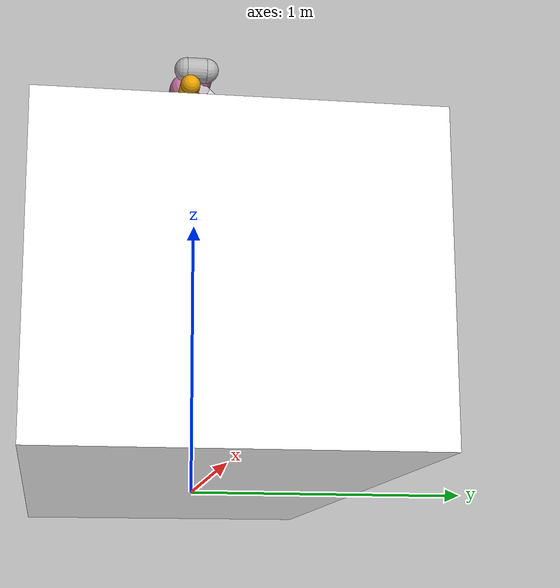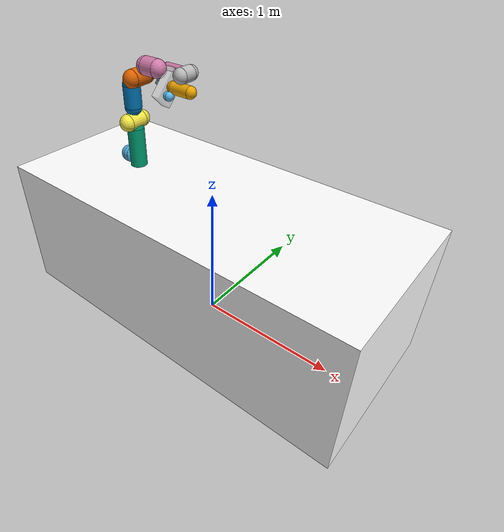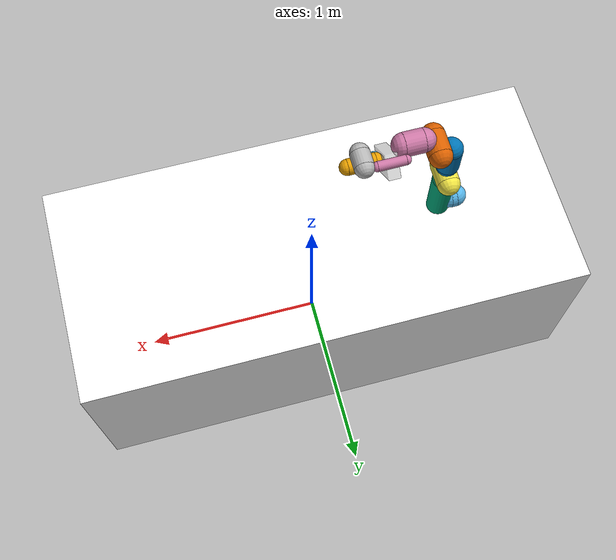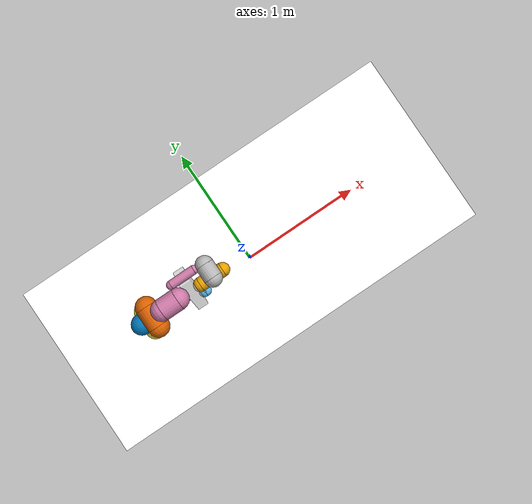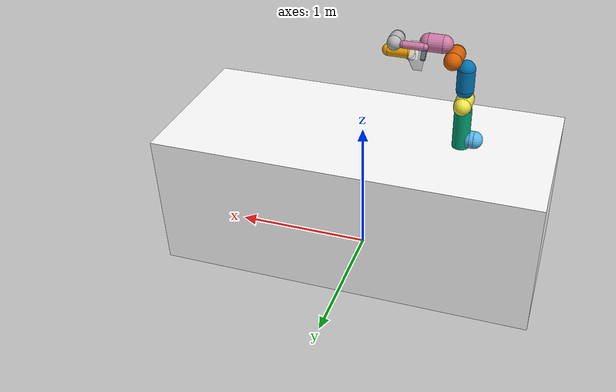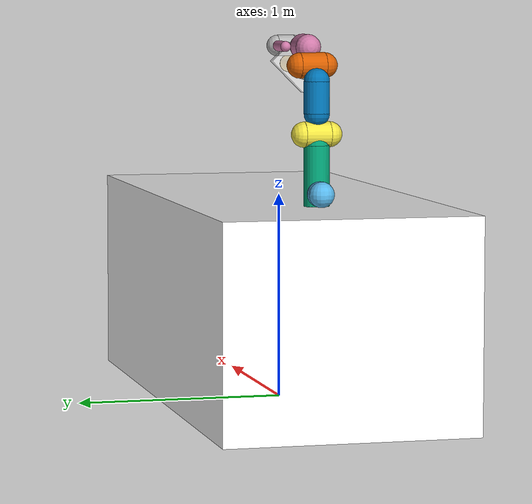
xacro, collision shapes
<?xml version="1.0" encoding="utf-8"?>
<robot xmlns:xacro="http://www.ros.org/wiki/xacro" name="panda">

  <xacro:arg name="arm_id" default="panda" />
  <xacro:arg name="hand" default="true" />

  <!-- box shaped table as base for the Panda -->
  <link name="base">
    <visual>
      <origin xyz="0 0 0.5" rpy="0 0 0"/>
      <geometry>
        <box size="2.7 1.2 1" />
      </geometry>
      <material name="White">
        <color rgba="1.0 1.0 1.0 1.0"/>
      </material>
    </visual>
    <collision>
      <origin xyz="0 0 0.5" rpy="0 0 0  "/>
      <geometry>
        <box size="2.7 1.2 1" />
      </geometry>
    </collision>
  </link>

  <!-- single arm with gripper -->
  <xacro:include filename="$(find franka_description)/robots/panda_arm.xacro"/>
  <xacro:panda_arm arm_id="panda" connected_to="base"  xyz="-0.7 0 1.00"
  sd0="0.01" sd1="0.01" sd2="0.01" sd3="0.01" sd4="0.01" sd5="0.01" sd6="0.01" sd7="0.01" sd8="0.001"
  a1="0.000474560429981023" d1="0.000483166682165302" theta1="-0.00304883355188383" alpha1="0.00148667086907321"
  a2="-3.69828865924539e-05" d2="-0.000288069909956647" theta2="-0.00812428761844092" alpha2="0.00421567136144437"
  a3="-0.000154357131719552" d3="-0.0010921364777817" theta3="0.00031894496234845" alpha3="-0.0030474925191138"
  a4="-0.000117600404870226" d4="0.000712982958085577" theta4="-0.00571261767823764" alpha4="0.00176867969486185"
  a5="-0.00058993701921134" d5="-0.000326649645213642" theta5="0.00939394386245098" alpha5="0.00123723772258799"
  a6="-0.000433705606644922" d6="-0.000293762477507038" theta6="-0.0156742348127345" alpha6="-0.00529320945025931"
  a7="-0.000589815315429364" d7="6.2389274666678e-05" theta7="0.0291501803388187" alpha7="0.00113202442328629" />
  <xacro:include filename="dyros_assembly_gripper2.xacro"/>
  <xacro:dyros_assembly_gripper2 ns="panda" rpy="0 0 ${-pi/4}" connected_to="panda_link8" />
</robot>

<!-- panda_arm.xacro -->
<robot xmlns:xacro="http://www.ros.org/wiki/xacro" name="panda">
  <!-- safety_distance: Minimum safety distance in [m] by which the collision volumes are expanded and which is enforced during robot motions -->
  <!-- arm_id: Namespace of the panda arm. Serves to differentiate between arms in case of multiple instances. -->
  <xacro:macro name="panda_arm" params="arm_id:='panda' description_pkg:='franka_description' connected_to:='' xyz:='0 0 0' rpy:='0 0 0' safety_distance:=0">
    <xacro:unless value="${not connected_to}">
      <joint name="${arm_id}_joint_${connected_to}" type="fixed">
        <parent link="${connected_to}"/>
        <child link="${arm_id}_link0"/>
        <origin rpy="${rpy}" xyz="${xyz}"/>
      </joint>
    </xacro:unless>
    <link name="${arm_id}_link0">
      <visual>
        <geometry>
          <mesh filename="package://${description_pkg}/meshes/visual/link0.dae"/>
        </geometry>
      </visual>
      <collision>
        <origin xyz="-0.075 0 0.06" rpy="0 ${pi/2} 0"/>
        <geometry>
          <cylinder radius="${0.06+safety_distance}" length="0.03" />
        </geometry>
      </collision>
      <collision>
        <origin xyz="-0.06 0 0.06" rpy="0 0 0"/>
        <geometry>
          <sphere radius="${0.06+safety_distance}" />
        </geometry>
      </collision>
      <collision>
        <origin xyz="-0.09 0 0.06" rpy="0 0 0"/>
        <geometry>
          <sphere radius="${0.06+safety_distance}" />
        </geometry>
      </collision>
    </link>
    <link name="${arm_id}_link1">
      <visual>
        <geometry>
          <mesh filename="package://${description_pkg}/meshes/visual/link1.dae"/>
        </geometry>
      </visual>
      <collision>
        <origin xyz="0 0 -0.1915" rpy="0 0 0"/>
        <geometry>
          <cylinder radius="${0.06+safety_distance}" length="0.2830" />
        </geometry>
      </collision>
      <collision>
        <origin xyz="0 0 -0.333" rpy="0 0 0"/>
        <geometry>
          <sphere radius="${0.06+safety_distance}" />
        </geometry>
      </collision>
      <collision>
        <origin xyz="0 0 -0.05" rpy="0 0 0"/>
        <geometry>
          <sphere radius="${0.06+safety_distance}" />
        </geometry>
      </collision>
    </link>
    <joint name="${arm_id}_joint1" type="revolute">
      <safety_controller k_position="100.0" k_velocity="40.0" soft_lower_limit="-2.8973" soft_upper_limit="2.8973"/>
      <origin rpy="0 0 0" xyz="0 0 0.333"/>
      <parent link="${arm_id}_link0"/>
      <child link="${arm_id}_link1"/>
      <axis xyz="0 0 1"/>
      <limit effort="87" lower="-2.8973" upper="2.8973" velocity="2.1750"/>
    </joint>
    <link name="${arm_id}_link2">
      <visual>
        <geometry>
          <mesh filename="package://${description_pkg}/meshes/visual/link2.dae"/>
        </geometry>
      </visual>
      <collision>
        <origin xyz="0 0 0" rpy="0 0 0"/>
        <geometry>
          <cylinder radius="${0.06+safety_distance}" length="0.12" />
        </geometry>
      </collision>
      <collision>
        <origin xyz="0 0 -0.06" rpy="0 0 0"/>
        <geometry>
          <sphere radius="${0.06+safety_distance}" />
        </geometry>
      </collision>
      <collision>
        <origin xyz="0 0 0.06" rpy="0 0 0"/>
        <geometry>
          <sphere radius="${0.06+safety_distance}" />
        </geometry>
      </collision>
    </link>
    <joint name="${arm_id}_joint2" type="revolute">
      <safety_controller k_position="100.0" k_velocity="40.0" soft_lower_limit="-1.7628" soft_upper_limit="1.7628"/>
      <origin rpy="${-pi/2} 0 0" xyz="0 0 0"/>
      <parent link="${arm_id}_link1"/>
      <child link="${arm_id}_link2"/>
      <axis xyz="0 0 1"/>
      <limit effort="87" lower="-1.7628" upper="1.7628" velocity="2.1750"/>
    </joint>
    <link name="${arm_id}_link3">
      <visual>
        <geometry>
          <mesh filename="package://${description_pkg}/meshes/visual/link3.dae"/>
        </geometry>
      </visual>
      <collision>
        <origin xyz="0 0 -0.145" rpy="0 0 0"/>
        <geometry>
          <cylinder radius="${0.06+safety_distance}" length="0.15" />
        </geometry>
      </collision>
      <collision>
        <origin xyz="0 0 -0.22" rpy="0 0 0"/>
        <geometry>
          <sphere radius="${0.06+safety_distance}" />
        </geometry>
      </collision>
      <collision>
        <origin xyz="0 0 -0.07" rpy="0 0 0"/>
        <geometry>
          <sphere radius="${0.06+safety_distance}" />
        </geometry>
      </collision>
    </link>
    <joint name="${arm_id}_joint3" type="revolute">
      <safety_controller k_position="100.0" k_velocity="40.0" soft_lower_limit="-2.8973" soft_upper_limit="2.8973"/>
      <origin rpy="${pi/2} 0 0" xyz="0 -0.316 0"/>
      <parent link="${arm_id}_link2"/>
      <child link="${arm_id}_link3"/>
      <axis xyz="0 0 1"/>
      <limit effort="87" lower="-2.8973" upper="2.8973" velocity="2.1750"/>
    </joint>
    <link name="${arm_id}_link4">
      <visual>
        <geometry>
          <mesh filename="package://${description_pkg}/meshes/visual/link4.dae"/>
        </geometry>
      </visual>
      <collision>
        <origin xyz="0 0 0" rpy="0 0 0"/>
        <geometry>
          <cylinder radius="${0.06+safety_distance}" length="0.12" />
        </geometry>
      </collision>
      <collision>
        <origin xyz="0 0 0.06" rpy="0 0 0"/>
        <geometry>
          <sphere radius="${0.06+safety_distance}" />
        </geometry>
      </collision>
      <collision>
        <origin xyz="0 0 -0.06" rpy="0 0 0"/>
        <geometry>
          <sphere radius="${0.06+safety_distance}" />
        </geometry>
      </collision>
    </link>
    <joint name="${arm_id}_joint4" type="revolute">
      <safety_controller k_position="100.0" k_velocity="40.0" soft_lower_limit="-3.0718" soft_upper_limit="-0.0698"/>
      <origin rpy="${pi/2} 0 0" xyz="0.0825 0 0"/>
      <parent link="${arm_id}_link3"/>
      <child link="${arm_id}_link4"/>
      <axis xyz="0 0 1"/>
      <limit effort="87" lower="-3.0718" upper="-0.0698" velocity="2.1750"/>
    </joint>
    <link name="${arm_id}_link5">
      <visual>
        <geometry>
          <mesh filename="package://${description_pkg}/meshes/visual/link5.dae"/>
        </geometry>
      </visual>
      <collision>
        <origin xyz="0 0 -0.26" rpy="0 0 0"/>
        <geometry>
          <cylinder radius="${0.06+safety_distance}" length="0.1" />
        </geometry>
      </collision>
      <collision>
        <origin xyz="0 0 -0.31" rpy="0 0 0"/>
        <geometry>
          <sphere radius="${0.06+safety_distance}" />
        </geometry>
      </collision>
      <collision>
        <origin xyz="0 0 -0.21" rpy="0 0 0"/>
        <geometry>
          <sphere radius="${0.06+safety_distance}" />
        </geometry>
      </collision>
      <collision>
        <origin xyz="0 0.08 -0.13" rpy="0 0 0"/>
        <geometry>
          <cylinder radius="${0.025+safety_distance}" length="0.14" />
        </geometry>
      </collision>
      <collision>
        <origin xyz="0 0.08 -0.06" rpy="0 0 0"/>
        <geometry>
          <sphere radius="${0.025+safety_distance}" />
        </geometry>
      </collision>
      <collision>
        <origin xyz="0 0.08 -0.20" rpy="0 0 0"/>
        <geometry>
          <sphere radius="${0.025+safety_distance}" />
        </geometry>
      </collision>

    </link>
    <joint name="${arm_id}_joint5" type="revolute">
      <safety_controller k_position="100.0" k_velocity="40.0" soft_lower_limit="-2.8973" soft_upper_limit="2.8973"/>
      <origin rpy="${-pi/2} 0 0" xyz="-0.0825 0.384 0"/>
      <parent link="${arm_id}_link4"/>
      <child link="${arm_id}_link5"/>
      <axis xyz="0 0 1"/>
      <limit effort="12" lower="-2.8973" upper="2.8973" velocity="2.6100"/>
    </joint>
    <link name="${arm_id}_link6">
      <visual>
        <geometry>
          <mesh filename="package://${description_pkg}/meshes/visual/link6.dae"/>
        </geometry>
      </visual>
      <collision>
        <origin xyz="0 0 -0.03" rpy="0 0 0"/>
        <geometry>
          <cylinder radius="${0.05+safety_distance}" length="0.08" />
        </geometry>
      </collision>
      <collision>
        <origin xyz="0 0 0.01" rpy="0 0 0"/>
        <geometry>
          <sphere radius="${0.05+safety_distance}" />
        </geometry>
      </collision>
      <collision>
        <origin xyz="0 0 -0.07" rpy="0 0 0"/>
        <geometry>
          <sphere radius="${0.05+safety_distance}" />
        </geometry>
      </collision>
    </link>
    <joint name="${arm_id}_joint6" type="revolute">
      <safety_controller k_position="100.0" k_velocity="40.0" soft_lower_limit="-0.0175" soft_upper_limit="3.7525"/>
      <origin rpy="${pi/2} 0 0" xyz="0 0 0"/>
      <parent link="${arm_id}_link5"/>
      <child link="${arm_id}_link6"/>
      <axis xyz="0 0 1"/>
      <limit effort="12" lower="-0.0175" upper="3.7525" velocity="2.6100"/>
    </joint>
    <link name="${arm_id}_link7">
      <visual>
        <geometry>
          <mesh filename="package://${description_pkg}/meshes/visual/link7.dae"/>
        </geometry>
      </visual>
      <collision>
        <origin xyz="0 0 0.01" rpy="0 0 0"/>
        <geometry>
          <cylinder radius="${0.04+safety_distance}" length="0.14" />
        </geometry>
      </collision>
      <collision>
        <origin xyz="0 0 0.08" rpy="0 0 0"/>
        <geometry>
          <sphere radius="${0.04+safety_distance}"  />
        </geometry>
      </collision>
      <collision>
        <origin xyz="0 0 -0.06" rpy="0 0 0"/>
        <geometry>
          <sphere radius="${0.04+safety_distance}"  />
        </geometry>
      </collision>
    </link>
    <joint name="${arm_id}_joint7" type="revolute">
      <safety_controller k_position="100.0" k_velocity="40.0" soft_lower_limit="-2.8973" soft_upper_limit="2.8973"/>
      <origin rpy="${pi/2} 0 0" xyz="0.088 0 0"/>
      <parent link="${arm_id}_link6"/>
      <child link="${arm_id}_link7"/>
      <axis xyz="0 0 1"/>
      <limit effort="12" lower="-2.8973" upper="2.8973" velocity="2.6100"/>
    </joint>
    <link name="${arm_id}_link8">
      <collision>
        <origin xyz="0.0424 0.0424 -0.0250" rpy="${pi} ${pi/2} ${pi/2}"/>
        <geometry>
          <cylinder radius="${0.03+safety_distance}"  length="0.01" />
        </geometry>
      </collision>
      <collision>
        <origin xyz="0.0424 0.0424 -0.02" rpy="0 0 0"/>
        <geometry>
          <sphere radius="${0.03+safety_distance}"  />
        </geometry>
      </collision>
      <collision>
        <origin xyz="0.0424 0.0424 -0.03" rpy="0 0 0"/>
        <geometry>
          <sphere radius="${0.03+safety_distance}"  />
        </geometry>
      </collision>
    </link>
    <joint name="${arm_id}_joint8" type="fixed">
      <origin rpy="0 0 0" xyz="0 0 0.107"/>
      <parent link="${arm_id}_link7"/>
      <child link="${arm_id}_link8"/>
    </joint>
  </xacro:macro>
</robot>

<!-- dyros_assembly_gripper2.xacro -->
<robot xmlns:xacro="http://www.ros.org/wiki/xacro" name="dyros_assembly_gripper2">
  <xacro:macro name="dyros_assembly_gripper2" params="connected_to:='' ns:='' rpy:='0 0 0' xyz:='0 0 0' ">
    <xacro:unless value="${connected_to == ''}">
      <joint name="${ns}_hand_joint" type="fixed">
        <parent link="${connected_to}"/>
        <child link="${ns}_hand"/>
        <origin xyz="${xyz}" rpy="${rpy}"/>
      </joint>
    </xacro:unless>
    <link name="${ns}_hand">
      <visual>
        <origin xyz="0 0 0" rpy="-1.57 0 -1.57"/>
        <geometry>
          <mesh filename="package://posco_dyros_description/meshes/gripper2_base.stl" scale="0.001 0.001 0.001"/>
        </geometry>
        <material name="white">
          <color rgba="0.9 0.9 0.9 0.75"/>
        </material>
      </visual>
      <collision>
        <origin xyz="0.017 0 0.029" rpy="0 0 0"/>
        <geometry>

          <box size="0.125 0.21 0.06"/>

        </geometry>
      </collision>
      <inertial>
        <mass value="0.55"/>
        <inertia ixx="0.0014362" ixy="0.000013" ixz="-0.0000278" iyy="0.00077" iyz="-0.0000000" izz="0.001039"/>
      </inertial>
    </link>

    <joint name="${ns}_finger_right_joint" type="prismatic">
      <parent link="${ns}_hand"/>
      <child link="${ns}_finger_right_link"/>
      <origin xyz="0 0.009 +0.0590" rpy="0 0 0"/>
      <axis xyz="0 +1 0"/>
      <limit lower="-0.1" upper="0.15" effort="1000000" velocity="1000000"/>
    </joint>
    <link name="${ns}_finger_right_link">
      <visual>
        <origin xyz="0 0 0" rpy="-1.57 0 -1.57"/>
        <geometry>
          <mesh filename="package://posco_dyros_description/meshes/gripper2_tip.stl" scale="0.001 0.001 0.001"/>
        </geometry>
        <material name="gray">
          <color rgba="0.25 0.3 0.35 0.75"/>
        </material>
      </visual>
      <collision>
        <origin xyz="0 0 0.01" rpy="0 0 0"/>
        <geometry>

          <box size="0.08 0.0185 0.035"/>

        </geometry>
      </collision>
    </link>

    <joint name="${ns}_finger_left_joint" type="prismatic">
      <parent link="${ns}_hand"/>
      <child link="${ns}_finger_left_link"/>
      <origin xyz="0 -0.009 +0.0590" rpy="0 0 0"/>
      <axis xyz="0 -1 0"/>
      <limit lower="-0.1" upper="0.15" effort="1000000" velocity="1000000"/>
    </joint>
    <link name="${ns}_finger_left_link">
      <visual>
        <origin xyz="0 0 0" rpy="-1.57 0 -1.57"/>
        <geometry>
          <mesh filename="package://posco_dyros_description/meshes/gripper2_tip.stl" scale="0.001 0.001 0.001"/>
        </geometry>
        <material name="gray">
          <color rgba="0.25 0.3 0.35 0.75"/>
        </material>
      </visual>
      <collision>
        <origin xyz="0 0 0.01" rpy="0 0 0"/>
        <geometry>

          <box size="0.08 0.0185 0.035"/>

        </geometry>
      </collision>
    </link>

  </xacro:macro>
</robot>
